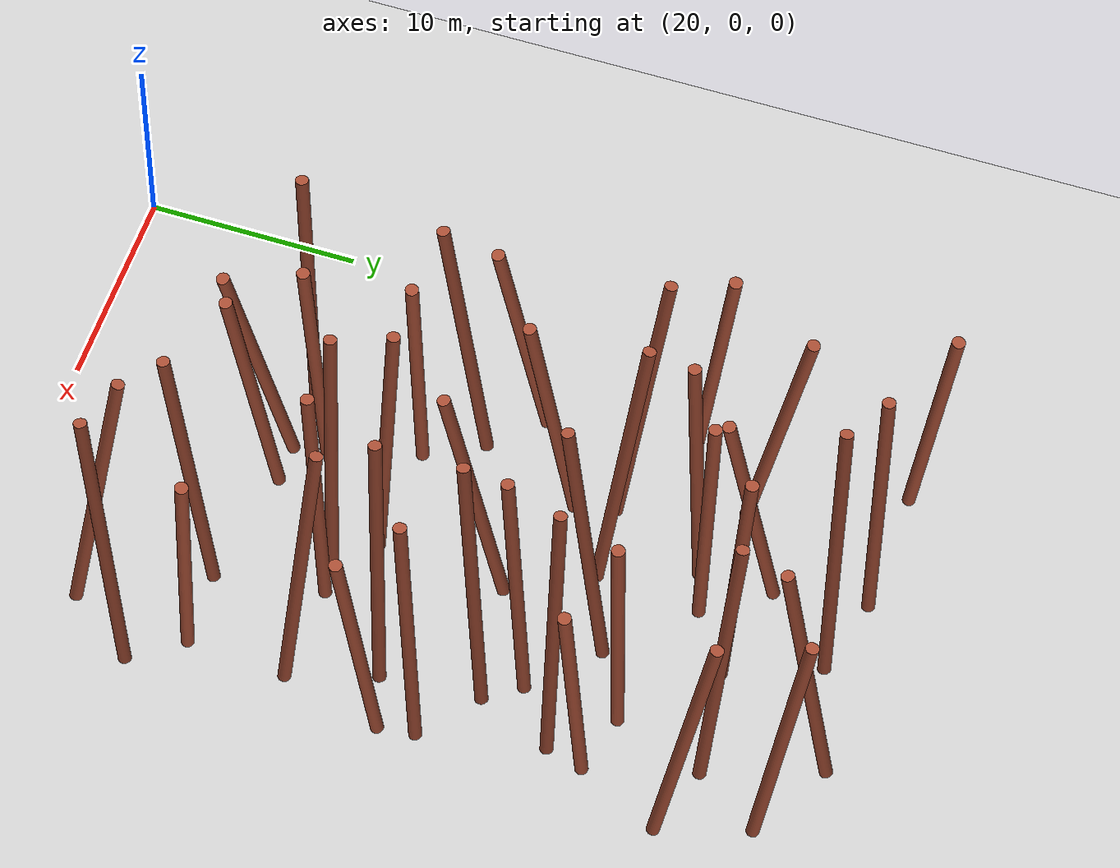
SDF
<sdf version="1.5">
 <world name="default">
  <include><uri>model://sun</uri></include>
  <include><uri>model://ground_plane</uri></include>
  <include><uri>model://asphalt_plane</uri><pose>0 0 -0.000001 0 0 0</pose></include>
  <model name="unit_cylinder_112">
   <pose>27.74535 10.86037 7.70000 0.05034 -0.10045 0.00000</pose>
   <gravity>0 0 0</gravity>
   <link name="link">
    <inertial>
     <mass>100</mass>
     <inertia><ixx>20</ixx><ixy>0</ixy><ixz>0</ixz><iyy>20</iyy><iyz>0</iyz><izz>20</izz></inertia>
    </inertial>
    <collision name="collision">
     <geometry><cylinder><radius>0.300</radius><length>15.000</length></cylinder></geometry>
    </collision>
    <visual name="visual">
     <geometry><cylinder><radius>0.300</radius><length>15.000</length></cylinder></geometry>
     <material>
      <script><name>Gazebo/Bricks</name><uri>file://media/materials/scripts/gazebo.material</uri></script>
     </material>
    </visual>
   </link>
   <static>1</static>
  </model>
  <model name="unit_cylinder_114">
   <pose>27.87703 18.30049 7.70000 0.14279 -0.03372 0.00000</pose>
   <gravity>0 0 0</gravity>
   <link name="link">
    <inertial>
     <mass>100</mass>
     <inertia><ixx>20</ixx><ixy>0</ixy><ixz>0</ixz><iyy>20</iyy><iyz>0</iyz><izz>20</izz></inertia>
    </inertial>
    <collision name="collision">
     <geometry><cylinder><radius>0.300</radius><length>15.000</length></cylinder></geometry>
    </collision>
    <visual name="visual">
     <geometry><cylinder><radius>0.300</radius><length>15.000</length></cylinder></geometry>
     <material>
      <script><name>Gazebo/Bricks</name><uri>file://media/materials/scripts/gazebo.material</uri></script>
     </material>
    </visual>
   </link>
   <static>1</static>
  </model>
  <model name="unit_cylinder_115">
   <pose>27.04338 20.73302 7.70000 0.11181 0.13801 0.00000</pose>
   <gravity>0 0 0</gravity>
   <link name="link">
    <inertial>
     <mass>100</mass>
     <inertia><ixx>20</ixx><ixy>0</ixy><ixz>0</ixz><iyy>20</iyy><iyz>0</iyz><izz>20</izz></inertia>
    </inertial>
    <collision name="collision">
     <geometry><cylinder><radius>0.300</radius><length>15.000</length></cylinder></geometry>
    </collision>
    <visual name="visual">
     <geometry><cylinder><radius>0.300</radius><length>15.000</length></cylinder></geometry>
     <material>
      <script><name>Gazebo/Bricks</name><uri>file://media/materials/scripts/gazebo.material</uri></script>
     </material>
    </visual>
   </link>
   <static>1</static>
  </model>
  <model name="unit_cylinder_116">
   <pose>28.45895 26.76882 7.70000 -0.09553 -0.16316 0.00000</pose>
   <gravity>0 0 0</gravity>
   <link name="link">
    <inertial>
     <mass>100</mass>
     <inertia><ixx>20</ixx><ixy>0</ixy><ixz>0</ixz><iyy>20</iyy><iyz>0</iyz><izz>20</izz></inertia>
    </inertial>
    <collision name="collision">
     <geometry><cylinder><radius>0.300</radius><length>15.000</length></cylinder></geometry>
    </collision>
    <visual name="visual">
     <geometry><cylinder><radius>0.300</radius><length>15.000</length></cylinder></geometry>
     <material>
      <script><name>Gazebo/Bricks</name><uri>file://media/materials/scripts/gazebo.material</uri></script>
     </material>
    </visual>
    <kinematic>1</kinematic>
   </link>
   <static>0</static>
   <plugin name="dynamic_obstacle_motion_116" filename="libobstaclePathPlugin.so">
    <motion_type>proximity_linear</motion_type>
    <direction>0.666834956 0.745205436 -0.000000000</direction>
    <velocity>0.474852907</velocity>
    <activation_distance>20.000000000</activation_distance>
    <activation_model>iris</activation_model>
    <orientation>false</orientation>
    <marker_enabled>true</marker_enabled>
    <marker_id>116</marker_id>
    <marker_radius>0.300000000</marker_radius>
    <marker_height>15.000000000</marker_height>
    <marker_rate>20.0</marker_rate>
    <marker_topic>/uav_simulator/dynamic_obstacles</marker_topic>
    <marker_frame>map</marker_frame>
   </plugin>
  </model>
  <model name="unit_cylinder_117">
   <pose>25.52468 29.25228 7.70000 -0.11158 0.09529 0.00000</pose>
   <gravity>0 0 0</gravity>
   <link name="link">
    <inertial>
     <mass>100</mass>
     <inertia><ixx>20</ixx><ixy>0</ixy><ixz>0</ixz><iyy>20</iyy><iyz>0</iyz><izz>20</izz></inertia>
    </inertial>
    <collision name="collision">
     <geometry><cylinder><radius>0.300</radius><length>15.000</length></cylinder></geometry>
    </collision>
    <visual name="visual">
     <geometry><cylinder><radius>0.300</radius><length>15.000</length></cylinder></geometry>
     <material>
      <script><name>Gazebo/Bricks</name><uri>file://media/materials/scripts/gazebo.material</uri></script>
     </material>
    </visual>
    <kinematic>1</kinematic>
   </link>
   <static>0</static>
   <plugin name="dynamic_obstacle_motion_117" filename="libobstaclePathPlugin.so">
    <motion_type>proximity_linear</motion_type>
    <direction>-0.609074142 0.793113289 -0.000000000</direction>
    <velocity>1.729240696</velocity>
    <activation_distance>20.000000000</activation_distance>
    <activation_model>iris</activation_model>
    <orientation>false</orientation>
    <marker_enabled>true</marker_enabled>
    <marker_id>117</marker_id>
    <marker_radius>0.300000000</marker_radius>
    <marker_height>15.000000000</marker_height>
    <marker_rate>20.0</marker_rate>
    <marker_topic>/uav_simulator/dynamic_obstacles</marker_topic>
    <marker_frame>map</marker_frame>
   </plugin>
  </model>
  <model name="unit_cylinder_118">
   <pose>28.16048 32.94810 7.70000 -0.16915 0.02239 0.00000</pose>
   <gravity>0 0 0</gravity>
   <link name="link">
    <inertial>
     <mass>100</mass>
     <inertia><ixx>20</ixx><ixy>0</ixy><ixz>0</ixz><iyy>20</iyy><iyz>0</iyz><izz>20</izz></inertia>
    </inertial>
    <collision name="collision">
     <geometry><cylinder><radius>0.300</radius><length>15.000</length></cylinder></geometry>
    </collision>
    <visual name="visual">
     <geometry><cylinder><radius>0.300</radius><length>15.000</length></cylinder></geometry>
     <material>
      <script><name>Gazebo/Bricks</name><uri>file://media/materials/scripts/gazebo.material</uri></script>
     </material>
    </visual>
    <kinematic>1</kinematic>
   </link>
   <static>0</static>
   <plugin name="dynamic_obstacle_motion_118" filename="libobstaclePathPlugin.so">
    <motion_type>proximity_linear</motion_type>
    <direction>0.884379714 0.466768167 0.000000000</direction>
    <velocity>1.361742940</velocity>
    <activation_distance>20.000000000</activation_distance>
    <activation_model>iris</activation_model>
    <orientation>false</orientation>
    <marker_enabled>true</marker_enabled>
    <marker_id>118</marker_id>
    <marker_radius>0.300000000</marker_radius>
    <marker_height>15.000000000</marker_height>
    <marker_rate>20.0</marker_rate>
    <marker_topic>/uav_simulator/dynamic_obstacles</marker_topic>
    <marker_frame>map</marker_frame>
   </plugin>
  </model>
  <model name="unit_cylinder_119">
   <pose>25.52675 39.23403 7.70000 -0.10777 0.09308 0.00000</pose>
   <gravity>0 0 0</gravity>
   <link name="link">
    <inertial>
     <mass>100</mass>
     <inertia><ixx>20</ixx><ixy>0</ixy><ixz>0</ixz><iyy>20</iyy><iyz>0</iyz><izz>20</izz></inertia>
    </inertial>
    <collision name="collision">
     <geometry><cylinder><radius>0.300</radius><length>15.000</length></cylinder></geometry>
    </collision>
    <visual name="visual">
     <geometry><cylinder><radius>0.300</radius><length>15.000</length></cylinder></geometry>
     <material>
      <script><name>Gazebo/Bricks</name><uri>file://media/materials/scripts/gazebo.material</uri></script>
     </material>
    </visual>
    <kinematic>1</kinematic>
   </link>
   <static>0</static>
   <plugin name="dynamic_obstacle_motion_119" filename="libobstaclePathPlugin.so">
    <motion_type>proximity_linear</motion_type>
    <direction>-0.947889785 0.318598424 0.000000000</direction>
    <velocity>0.718222326</velocity>
    <activation_distance>20.000000000</activation_distance>
    <activation_model>iris</activation_model>
    <orientation>false</orientation>
    <marker_enabled>true</marker_enabled>
    <marker_id>119</marker_id>
    <marker_radius>0.300000000</marker_radius>
    <marker_height>15.000000000</marker_height>
    <marker_rate>20.0</marker_rate>
    <marker_topic>/uav_simulator/dynamic_obstacles</marker_topic>
    <marker_frame>map</marker_frame>
   </plugin>
  </model>
  <model name="unit_cylinder_132">
   <pose>32.05302 10.04139 7.70000 0.13480 0.13348 0.00000</pose>
   <gravity>0 0 0</gravity>
   <link name="link">
    <inertial>
     <mass>100</mass>
     <inertia><ixx>20</ixx><ixy>0</ixy><ixz>0</ixz><iyy>20</iyy><iyz>0</iyz><izz>20</izz></inertia>
    </inertial>
    <collision name="collision">
     <geometry><cylinder><radius>0.300</radius><length>15.000</length></cylinder></geometry>
    </collision>
    <visual name="visual">
     <geometry><cylinder><radius>0.300</radius><length>15.000</length></cylinder></geometry>
     <material>
      <script><name>Gazebo/Bricks</name><uri>file://media/materials/scripts/gazebo.material</uri></script>
     </material>
    </visual>
    <kinematic>1</kinematic>
   </link>
   <static>0</static>
   <plugin name="dynamic_obstacle_motion_132" filename="libobstaclePathPlugin.so">
    <motion_type>proximity_linear</motion_type>
    <direction>-0.993745329 -0.111670147 0.000000000</direction>
    <velocity>0.364253635</velocity>
    <activation_distance>20.000000000</activation_distance>
    <activation_model>iris</activation_model>
    <orientation>false</orientation>
    <marker_enabled>true</marker_enabled>
    <marker_id>132</marker_id>
    <marker_radius>0.300000000</marker_radius>
    <marker_height>15.000000000</marker_height>
    <marker_rate>20.0</marker_rate>
    <marker_topic>/uav_simulator/dynamic_obstacles</marker_topic>
    <marker_frame>map</marker_frame>
   </plugin>
  </model>
  <model name="unit_cylinder_133">
   <pose>31.20562 12.38164 7.70000 0.01730 0.07194 0.00000</pose>
   <gravity>0 0 0</gravity>
   <link name="link">
    <inertial>
     <mass>100</mass>
     <inertia><ixx>20</ixx><ixy>0</ixy><ixz>0</ixz><iyy>20</iyy><iyz>0</iyz><izz>20</izz></inertia>
    </inertial>
    <collision name="collision">
     <geometry><cylinder><radius>0.300</radius><length>15.000</length></cylinder></geometry>
    </collision>
    <visual name="visual">
     <geometry><cylinder><radius>0.300</radius><length>15.000</length></cylinder></geometry>
     <material>
      <script><name>Gazebo/Bricks</name><uri>file://media/materials/scripts/gazebo.material</uri></script>
     </material>
    </visual>
    <kinematic>1</kinematic>
   </link>
   <static>0</static>
   <plugin name="dynamic_obstacle_motion_133" filename="libobstaclePathPlugin.so">
    <motion_type>proximity_linear</motion_type>
    <direction>-0.858018311 0.513619098 0.000000000</direction>
    <velocity>1.835171626</velocity>
    <activation_distance>20.000000000</activation_distance>
    <activation_model>iris</activation_model>
    <orientation>false</orientation>
    <marker_enabled>true</marker_enabled>
    <marker_id>133</marker_id>
    <marker_radius>0.300000000</marker_radius>
    <marker_height>15.000000000</marker_height>
    <marker_rate>20.0</marker_rate>
    <marker_topic>/uav_simulator/dynamic_obstacles</marker_topic>
    <marker_frame>map</marker_frame>
   </plugin>
  </model>
  <model name="unit_cylinder_134">
   <pose>30.28063 16.85545 7.70000 -0.01697 0.10522 0.00000</pose>
   <gravity>0 0 0</gravity>
   <link name="link">
    <inertial>
     <mass>100</mass>
     <inertia><ixx>20</ixx><ixy>0</ixy><ixz>0</ixz><iyy>20</iyy><iyz>0</iyz><izz>20</izz></inertia>
    </inertial>
    <collision name="collision">
     <geometry><cylinder><radius>0.300</radius><length>15.000</length></cylinder></geometry>
    </collision>
    <visual name="visual">
     <geometry><cylinder><radius>0.300</radius><length>15.000</length></cylinder></geometry>
     <material>
      <script><name>Gazebo/Bricks</name><uri>file://media/materials/scripts/gazebo.material</uri></script>
     </material>
    </visual>
    <kinematic>1</kinematic>
   </link>
   <static>0</static>
   <plugin name="dynamic_obstacle_motion_134" filename="libobstaclePathPlugin.so">
    <motion_type>proximity_linear</motion_type>
    <direction>0.832070155 0.554670404 0.000000000</direction>
    <velocity>0.270245892</velocity>
    <activation_distance>20.000000000</activation_distance>
    <activation_model>iris</activation_model>
    <orientation>false</orientation>
    <marker_enabled>true</marker_enabled>
    <marker_id>134</marker_id>
    <marker_radius>0.300000000</marker_radius>
    <marker_height>15.000000000</marker_height>
    <marker_rate>20.0</marker_rate>
    <marker_topic>/uav_simulator/dynamic_obstacles</marker_topic>
    <marker_frame>map</marker_frame>
   </plugin>
  </model>
  <model name="unit_cylinder_135">
   <pose>30.70385 23.30362 7.70000 0.11654 0.09221 0.00000</pose>
   <gravity>0 0 0</gravity>
   <link name="link">
    <inertial>
     <mass>100</mass>
     <inertia><ixx>20</ixx><ixy>0</ixy><ixz>0</ixz><iyy>20</iyy><iyz>0</iyz><izz>20</izz></inertia>
    </inertial>
    <collision name="collision">
     <geometry><cylinder><radius>0.300</radius><length>15.000</length></cylinder></geometry>
    </collision>
    <visual name="visual">
     <geometry><cylinder><radius>0.300</radius><length>15.000</length></cylinder></geometry>
     <material>
      <script><name>Gazebo/Bricks</name><uri>file://media/materials/scripts/gazebo.material</uri></script>
     </material>
    </visual>
   </link>
   <static>1</static>
  </model>
  <model name="unit_cylinder_136">
   <pose>32.08161 26.98344 7.70000 -0.08966 -0.16598 0.00000</pose>
   <gravity>0 0 0</gravity>
   <link name="link">
    <inertial>
     <mass>100</mass>
     <inertia><ixx>20</ixx><ixy>0</ixy><ixz>0</ixz><iyy>20</iyy><iyz>0</iyz><izz>20</izz></inertia>
    </inertial>
    <collision name="collision">
     <geometry><cylinder><radius>0.300</radius><length>15.000</length></cylinder></geometry>
    </collision>
    <visual name="visual">
     <geometry><cylinder><radius>0.300</radius><length>15.000</length></cylinder></geometry>
     <material>
      <script><name>Gazebo/Bricks</name><uri>file://media/materials/scripts/gazebo.material</uri></script>
     </material>
    </visual>
   </link>
   <static>1</static>
  </model>
  <model name="unit_cylinder_137">
   <pose>31.43012 30.19324 7.70000 0.05524 -0.03098 0.00000</pose>
   <gravity>0 0 0</gravity>
   <link name="link">
    <inertial>
     <mass>100</mass>
     <inertia><ixx>20</ixx><ixy>0</ixy><ixz>0</ixz><iyy>20</iyy><iyz>0</iyz><izz>20</izz></inertia>
    </inertial>
    <collision name="collision">
     <geometry><cylinder><radius>0.300</radius><length>15.000</length></cylinder></geometry>
    </collision>
    <visual name="visual">
     <geometry><cylinder><radius>0.300</radius><length>15.000</length></cylinder></geometry>
     <material>
      <script><name>Gazebo/Bricks</name><uri>file://media/materials/scripts/gazebo.material</uri></script>
     </material>
    </visual>
   </link>
   <static>1</static>
  </model>
  <model name="unit_cylinder_138">
   <pose>32.56086 33.05634 7.70000 0.13762 0.12561 0.00000</pose>
   <gravity>0 0 0</gravity>
   <link name="link">
    <inertial>
     <mass>100</mass>
     <inertia><ixx>20</ixx><ixy>0</ixy><ixz>0</ixz><iyy>20</iyy><iyz>0</iyz><izz>20</izz></inertia>
    </inertial>
    <collision name="collision">
     <geometry><cylinder><radius>0.300</radius><length>15.000</length></cylinder></geometry>
    </collision>
    <visual name="visual">
     <geometry><cylinder><radius>0.300</radius><length>15.000</length></cylinder></geometry>
     <material>
      <script><name>Gazebo/Bricks</name><uri>file://media/materials/scripts/gazebo.material</uri></script>
     </material>
    </visual>
    <kinematic>1</kinematic>
   </link>
   <static>0</static>
   <plugin name="dynamic_obstacle_motion_138" filename="libobstaclePathPlugin.so">
    <motion_type>proximity_linear</motion_type>
    <direction>-0.797183945 -0.603736497 0.000000000</direction>
    <velocity>0.761127085</velocity>
    <activation_distance>20.000000000</activation_distance>
    <activation_model>iris</activation_model>
    <orientation>false</orientation>
    <marker_enabled>true</marker_enabled>
    <marker_id>138</marker_id>
    <marker_radius>0.300000000</marker_radius>
    <marker_height>15.000000000</marker_height>
    <marker_rate>20.0</marker_rate>
    <marker_topic>/uav_simulator/dynamic_obstacles</marker_topic>
    <marker_frame>map</marker_frame>
   </plugin>
  </model>
  <model name="unit_cylinder_139">
   <pose>30.55597 38.19634 7.70000 0.01178 -0.04278 0.00000</pose>
   <gravity>0 0 0</gravity>
   <link name="link">
    <inertial>
     <mass>100</mass>
     <inertia><ixx>20</ixx><ixy>0</ixy><ixz>0</ixz><iyy>20</iyy><iyz>0</iyz><izz>20</izz></inertia>
    </inertial>
    <collision name="collision">
     <geometry><cylinder><radius>0.300</radius><length>15.000</length></cylinder></geometry>
    </collision>
    <visual name="visual">
     <geometry><cylinder><radius>0.300</radius><length>15.000</length></cylinder></geometry>
     <material>
      <script><name>Gazebo/Bricks</name><uri>file://media/materials/scripts/gazebo.material</uri></script>
     </material>
    </visual>
   </link>
   <static>1</static>
  </model>
  <model name="unit_cylinder_152">
   <pose>33.56734 10.30587 7.70000 0.09227 0.09206 0.00000</pose>
   <gravity>0 0 0</gravity>
   <link name="link">
    <inertial>
     <mass>100</mass>
     <inertia><ixx>20</ixx><ixy>0</ixy><ixz>0</ixz><iyy>20</iyy><iyz>0</iyz><izz>20</izz></inertia>
    </inertial>
    <collision name="collision">
     <geometry><cylinder><radius>0.300</radius><length>15.000</length></cylinder></geometry>
    </collision>
    <visual name="visual">
     <geometry><cylinder><radius>0.300</radius><length>15.000</length></cylinder></geometry>
     <material>
      <script><name>Gazebo/Bricks</name><uri>file://media/materials/scripts/gazebo.material</uri></script>
     </material>
    </visual>
   </link>
   <static>1</static>
  </model>
  <model name="unit_cylinder_153">
   <pose>35.51889 14.66713 7.70000 0.01790 -0.11387 0.00000</pose>
   <gravity>0 0 0</gravity>
   <link name="link">
    <inertial>
     <mass>100</mass>
     <inertia><ixx>20</ixx><ixy>0</ixy><ixz>0</ixz><iyy>20</iyy><iyz>0</iyz><izz>20</izz></inertia>
    </inertial>
    <collision name="collision">
     <geometry><cylinder><radius>0.300</radius><length>15.000</length></cylinder></geometry>
    </collision>
    <visual name="visual">
     <geometry><cylinder><radius>0.300</radius><length>15.000</length></cylinder></geometry>
     <material>
      <script><name>Gazebo/Bricks</name><uri>file://media/materials/scripts/gazebo.material</uri></script>
     </material>
    </visual>
    <kinematic>1</kinematic>
   </link>
   <static>0</static>
   <plugin name="dynamic_obstacle_motion_153" filename="libobstaclePathPlugin.so">
    <motion_type>proximity_linear</motion_type>
    <direction>-0.433672787 0.901070427 0.000000000</direction>
    <velocity>1.526734299</velocity>
    <activation_distance>20.000000000</activation_distance>
    <activation_model>iris</activation_model>
    <orientation>false</orientation>
    <marker_enabled>true</marker_enabled>
    <marker_id>153</marker_id>
    <marker_radius>0.300000000</marker_radius>
    <marker_height>15.000000000</marker_height>
    <marker_rate>20.0</marker_rate>
    <marker_topic>/uav_simulator/dynamic_obstacles</marker_topic>
    <marker_frame>map</marker_frame>
   </plugin>
  </model>
  <model name="unit_cylinder_154">
   <pose>34.23109 16.76425 7.70000 -0.03972 -0.07301 0.00000</pose>
   <gravity>0 0 0</gravity>
   <link name="link">
    <inertial>
     <mass>100</mass>
     <inertia><ixx>20</ixx><ixy>0</ixy><ixz>0</ixz><iyy>20</iyy><iyz>0</iyz><izz>20</izz></inertia>
    </inertial>
    <collision name="collision">
     <geometry><cylinder><radius>0.300</radius><length>15.000</length></cylinder></geometry>
    </collision>
    <visual name="visual">
     <geometry><cylinder><radius>0.300</radius><length>15.000</length></cylinder></geometry>
     <material>
      <script><name>Gazebo/Bricks</name><uri>file://media/materials/scripts/gazebo.material</uri></script>
     </material>
    </visual>
   </link>
   <static>1</static>
  </model>
  <model name="unit_cylinder_155">
   <pose>35.68902 21.36283 7.70000 0.16297 0.05048 0.00000</pose>
   <gravity>0 0 0</gravity>
   <link name="link">
    <inertial>
     <mass>100</mass>
     <inertia><ixx>20</ixx><ixy>0</ixy><ixz>0</ixz><iyy>20</iyy><iyz>0</iyz><izz>20</izz></inertia>
    </inertial>
    <collision name="collision">
     <geometry><cylinder><radius>0.300</radius><length>15.000</length></cylinder></geometry>
    </collision>
    <visual name="visual">
     <geometry><cylinder><radius>0.300</radius><length>15.000</length></cylinder></geometry>
     <material>
      <script><name>Gazebo/Bricks</name><uri>file://media/materials/scripts/gazebo.material</uri></script>
     </material>
    </visual>
   </link>
   <static>1</static>
  </model>
  <model name="unit_cylinder_156">
   <pose>36.50892 26.73412 7.70000 0.14278 -0.07115 0.00000</pose>
   <gravity>0 0 0</gravity>
   <link name="link">
    <inertial>
     <mass>100</mass>
     <inertia><ixx>20</ixx><ixy>0</ixy><ixz>0</ixz><iyy>20</iyy><iyz>0</iyz><izz>20</izz></inertia>
    </inertial>
    <collision name="collision">
     <geometry><cylinder><radius>0.300</radius><length>15.000</length></cylinder></geometry>
    </collision>
    <visual name="visual">
     <geometry><cylinder><radius>0.300</radius><length>15.000</length></cylinder></geometry>
     <material>
      <script><name>Gazebo/Bricks</name><uri>file://media/materials/scripts/gazebo.material</uri></script>
     </material>
    </visual>
   </link>
   <static>1</static>
  </model>
  <model name="unit_cylinder_157">
   <pose>33.73118 31.36377 7.70000 -0.02480 0.02352 0.00000</pose>
   <gravity>0 0 0</gravity>
   <link name="link">
    <inertial>
     <mass>100</mass>
     <inertia><ixx>20</ixx><ixy>0</ixy><ixz>0</ixz><iyy>20</iyy><iyz>0</iyz><izz>20</izz></inertia>
    </inertial>
    <collision name="collision">
     <geometry><cylinder><radius>0.300</radius><length>15.000</length></cylinder></geometry>
    </collision>
    <visual name="visual">
     <geometry><cylinder><radius>0.300</radius><length>15.000</length></cylinder></geometry>
     <material>
      <script><name>Gazebo/Bricks</name><uri>file://media/materials/scripts/gazebo.material</uri></script>
     </material>
    </visual>
   </link>
   <static>1</static>
  </model>
  <model name="unit_cylinder_158">
   <pose>36.24025 33.46193 7.70000 -0.05071 -0.01518 0.00000</pose>
   <gravity>0 0 0</gravity>
   <link name="link">
    <inertial>
     <mass>100</mass>
     <inertia><ixx>20</ixx><ixy>0</ixy><ixz>0</ixz><iyy>20</iyy><iyz>0</iyz><izz>20</izz></inertia>
    </inertial>
    <collision name="collision">
     <geometry><cylinder><radius>0.300</radius><length>15.000</length></cylinder></geometry>
    </collision>
    <visual name="visual">
     <geometry><cylinder><radius>0.300</radius><length>15.000</length></cylinder></geometry>
     <material>
      <script><name>Gazebo/Bricks</name><uri>file://media/materials/scripts/gazebo.material</uri></script>
     </material>
    </visual>
    <kinematic>1</kinematic>
   </link>
   <static>0</static>
   <plugin name="dynamic_obstacle_motion_158" filename="libobstaclePathPlugin.so">
    <motion_type>proximity_linear</motion_type>
    <direction>-0.181990752 -0.983300242 0.000000000</direction>
    <velocity>0.301366166</velocity>
    <activation_distance>20.000000000</activation_distance>
    <activation_model>iris</activation_model>
    <orientation>false</orientation>
    <marker_enabled>true</marker_enabled>
    <marker_id>158</marker_id>
    <marker_radius>0.300000000</marker_radius>
    <marker_height>15.000000000</marker_height>
    <marker_rate>20.0</marker_rate>
    <marker_topic>/uav_simulator/dynamic_obstacles</marker_topic>
    <marker_frame>map</marker_frame>
   </plugin>
  </model>
  <model name="unit_cylinder_159">
   <pose>33.50218 37.11241 7.70000 0.03466 -0.16466 0.00000</pose>
   <gravity>0 0 0</gravity>
   <link name="link">
    <inertial>
     <mass>100</mass>
     <inertia><ixx>20</ixx><ixy>0</ixy><ixz>0</ixz><iyy>20</iyy><iyz>0</iyz><izz>20</izz></inertia>
    </inertial>
    <collision name="collision">
     <geometry><cylinder><radius>0.300</radius><length>15.000</length></cylinder></geometry>
    </collision>
    <visual name="visual">
     <geometry><cylinder><radius>0.300</radius><length>15.000</length></cylinder></geometry>
     <material>
      <script><name>Gazebo/Bricks</name><uri>file://media/materials/scripts/gazebo.material</uri></script>
     </material>
    </visual>
    <kinematic>1</kinematic>
   </link>
   <static>0</static>
   <plugin name="dynamic_obstacle_motion_159" filename="libobstaclePathPlugin.so">
    <motion_type>proximity_linear</motion_type>
    <direction>-0.942698217 -0.333646628 0.000000000</direction>
    <velocity>0.441131157</velocity>
    <activation_distance>20.000000000</activation_distance>
    <activation_model>iris</activation_model>
    <orientation>false</orientation>
    <marker_enabled>true</marker_enabled>
    <marker_id>159</marker_id>
    <marker_radius>0.300000000</marker_radius>
    <marker_height>15.000000000</marker_height>
    <marker_rate>20.0</marker_rate>
    <marker_topic>/uav_simulator/dynamic_obstacles</marker_topic>
    <marker_frame>map</marker_frame>
   </plugin>
  </model>
  <model name="unit_cylinder_171">
   <pose>40.68272 5.64184 7.70000 -0.14676 -0.13757 0.00000</pose>
   <gravity>0 0 0</gravity>
   <link name="link">
    <inertial>
     <mass>100</mass>
     <inertia><ixx>20</ixx><ixy>0</ixy><ixz>0</ixz><iyy>20</iyy><iyz>0</iyz><izz>20</izz></inertia>
    </inertial>
    <collision name="collision">
     <geometry><cylinder><radius>0.300</radius><length>15.000</length></cylinder></geometry>
    </collision>
    <visual name="visual">
     <geometry><cylinder><radius>0.300</radius><length>15.000</length></cylinder></geometry>
     <material>
      <script><name>Gazebo/Bricks</name><uri>file://media/materials/scripts/gazebo.material</uri></script>
     </material>
    </visual>
   </link>
   <static>1</static>
  </model>
  <model name="unit_cylinder_172">
   <pose>38.37421 9.08986 7.70000 0.12404 -0.04997 0.00000</pose>
   <gravity>0 0 0</gravity>
   <link name="link">
    <inertial>
     <mass>100</mass>
     <inertia><ixx>20</ixx><ixy>0</ixy><ixz>0</ixz><iyy>20</iyy><iyz>0</iyz><izz>20</izz></inertia>
    </inertial>
    <collision name="collision">
     <geometry><cylinder><radius>0.300</radius><length>15.000</length></cylinder></geometry>
    </collision>
    <visual name="visual">
     <geometry><cylinder><radius>0.300</radius><length>15.000</length></cylinder></geometry>
     <material>
      <script><name>Gazebo/Bricks</name><uri>file://media/materials/scripts/gazebo.material</uri></script>
     </material>
    </visual>
    <kinematic>1</kinematic>
   </link>
   <static>0</static>
   <plugin name="dynamic_obstacle_motion_172" filename="libobstaclePathPlugin.so">
    <motion_type>proximity_linear</motion_type>
    <direction>0.464951464 -0.885336171 0.000000000</direction>
    <velocity>1.213142917</velocity>
    <activation_distance>20.000000000</activation_distance>
    <activation_model>iris</activation_model>
    <orientation>false</orientation>
    <marker_enabled>true</marker_enabled>
    <marker_id>172</marker_id>
    <marker_radius>0.300000000</marker_radius>
    <marker_height>15.000000000</marker_height>
    <marker_rate>20.0</marker_rate>
    <marker_topic>/uav_simulator/dynamic_obstacles</marker_topic>
    <marker_frame>map</marker_frame>
   </plugin>
  </model>
  <model name="unit_cylinder_173">
   <pose>37.92122 14.84577 7.70000 0.02387 0.00122 0.00000</pose>
   <gravity>0 0 0</gravity>
   <link name="link">
    <inertial>
     <mass>100</mass>
     <inertia><ixx>20</ixx><ixy>0</ixy><ixz>0</ixz><iyy>20</iyy><iyz>0</iyz><izz>20</izz></inertia>
    </inertial>
    <collision name="collision">
     <geometry><cylinder><radius>0.300</radius><length>15.000</length></cylinder></geometry>
    </collision>
    <visual name="visual">
     <geometry><cylinder><radius>0.300</radius><length>15.000</length></cylinder></geometry>
     <material>
      <script><name>Gazebo/Bricks</name><uri>file://media/materials/scripts/gazebo.material</uri></script>
     </material>
    </visual>
    <kinematic>1</kinematic>
   </link>
   <static>0</static>
   <plugin name="dynamic_obstacle_motion_173" filename="libobstaclePathPlugin.so">
    <motion_type>proximity_linear</motion_type>
    <direction>-0.773989747 0.633198130 0.000000000</direction>
    <velocity>0.532166491</velocity>
    <activation_distance>20.000000000</activation_distance>
    <activation_model>iris</activation_model>
    <orientation>false</orientation>
    <marker_enabled>true</marker_enabled>
    <marker_id>173</marker_id>
    <marker_radius>0.300000000</marker_radius>
    <marker_height>15.000000000</marker_height>
    <marker_rate>20.0</marker_rate>
    <marker_topic>/uav_simulator/dynamic_obstacles</marker_topic>
    <marker_frame>map</marker_frame>
   </plugin>
  </model>
  <model name="unit_cylinder_174">
   <pose>40.29233 18.48860 7.70000 0.04421 -0.14767 0.00000</pose>
   <gravity>0 0 0</gravity>
   <link name="link">
    <inertial>
     <mass>100</mass>
     <inertia><ixx>20</ixx><ixy>0</ixy><ixz>0</ixz><iyy>20</iyy><iyz>0</iyz><izz>20</izz></inertia>
    </inertial>
    <collision name="collision">
     <geometry><cylinder><radius>0.300</radius><length>15.000</length></cylinder></geometry>
    </collision>
    <visual name="visual">
     <geometry><cylinder><radius>0.300</radius><length>15.000</length></cylinder></geometry>
     <material>
      <script><name>Gazebo/Bricks</name><uri>file://media/materials/scripts/gazebo.material</uri></script>
     </material>
    </visual>
   </link>
   <static>1</static>
  </model>
  <model name="unit_cylinder_175">
   <pose>40.06194 22.76758 7.70000 0.09417 -0.13146 0.00000</pose>
   <gravity>0 0 0</gravity>
   <link name="link">
    <inertial>
     <mass>100</mass>
     <inertia><ixx>20</ixx><ixy>0</ixy><ixz>0</ixz><iyy>20</iyy><iyz>0</iyz><izz>20</izz></inertia>
    </inertial>
    <collision name="collision">
     <geometry><cylinder><radius>0.300</radius><length>15.000</length></cylinder></geometry>
    </collision>
    <visual name="visual">
     <geometry><cylinder><radius>0.300</radius><length>15.000</length></cylinder></geometry>
     <material>
      <script><name>Gazebo/Bricks</name><uri>file://media/materials/scripts/gazebo.material</uri></script>
     </material>
    </visual>
   </link>
   <static>1</static>
  </model>
  <model name="unit_cylinder_176">
   <pose>39.57082 24.58155 7.70000 0.06331 -0.03416 0.00000</pose>
   <gravity>0 0 0</gravity>
   <link name="link">
    <inertial>
     <mass>100</mass>
     <inertia><ixx>20</ixx><ixy>0</ixy><ixz>0</ixz><iyy>20</iyy><iyz>0</iyz><izz>20</izz></inertia>
    </inertial>
    <collision name="collision">
     <geometry><cylinder><radius>0.300</radius><length>15.000</length></cylinder></geometry>
    </collision>
    <visual name="visual">
     <geometry><cylinder><radius>0.300</radius><length>15.000</length></cylinder></geometry>
     <material>
      <script><name>Gazebo/Bricks</name><uri>file://media/materials/scripts/gazebo.material</uri></script>
     </material>
    </visual>
   </link>
   <static>1</static>
  </model>
  <model name="unit_cylinder_177">
   <pose>40.55861 29.49933 7.70000 -0.00270 0.05993 0.00000</pose>
   <gravity>0 0 0</gravity>
   <link name="link">
    <inertial>
     <mass>100</mass>
     <inertia><ixx>20</ixx><ixy>0</ixy><ixz>0</ixz><iyy>20</iyy><iyz>0</iyz><izz>20</izz></inertia>
    </inertial>
    <collision name="collision">
     <geometry><cylinder><radius>0.300</radius><length>15.000</length></cylinder></geometry>
    </collision>
    <visual name="visual">
     <geometry><cylinder><radius>0.300</radius><length>15.000</length></cylinder></geometry>
     <material>
      <script><name>Gazebo/Bricks</name><uri>file://media/materials/scripts/gazebo.material</uri></script>
     </material>
    </visual>
   </link>
   <static>1</static>
  </model>
  <model name="unit_cylinder_178">
   <pose>40.44743 34.06743 7.70000 -0.04503 -0.15846 0.00000</pose>
   <gravity>0 0 0</gravity>
   <link name="link">
    <inertial>
     <mass>100</mass>
     <inertia><ixx>20</ixx><ixy>0</ixy><ixz>0</ixz><iyy>20</iyy><iyz>0</iyz><izz>20</izz></inertia>
    </inertial>
    <collision name="collision">
     <geometry><cylinder><radius>0.300</radius><length>15.000</length></cylinder></geometry>
    </collision>
    <visual name="visual">
     <geometry><cylinder><radius>0.300</radius><length>15.000</length></cylinder></geometry>
     <material>
      <script><name>Gazebo/Bricks</name><uri>file://media/materials/scripts/gazebo.material</uri></script>
     </material>
    </visual>
    <kinematic>1</kinematic>
   </link>
   <static>0</static>
   <plugin name="dynamic_obstacle_motion_178" filename="libobstaclePathPlugin.so">
    <motion_type>proximity_linear</motion_type>
    <direction>0.766911514 0.641752857 0.000000000</direction>
    <velocity>0.793428052</velocity>
    <activation_distance>20.000000000</activation_distance>
    <activation_model>iris</activation_model>
    <orientation>false</orientation>
    <marker_enabled>true</marker_enabled>
    <marker_id>178</marker_id>
    <marker_radius>0.300000000</marker_radius>
    <marker_height>15.000000000</marker_height>
    <marker_rate>20.0</marker_rate>
    <marker_topic>/uav_simulator/dynamic_obstacles</marker_topic>
    <marker_frame>map</marker_frame>
   </plugin>
  </model>
  <model name="unit_cylinder_179">
   <pose>39.84404 37.75085 7.70000 0.16204 0.00792 0.00000</pose>
   <gravity>0 0 0</gravity>
   <link name="link">
    <inertial>
     <mass>100</mass>
     <inertia><ixx>20</ixx><ixy>0</ixy><ixz>0</ixz><iyy>20</iyy><iyz>0</iyz><izz>20</izz></inertia>
    </inertial>
    <collision name="collision">
     <geometry><cylinder><radius>0.300</radius><length>15.000</length></cylinder></geometry>
    </collision>
    <visual name="visual">
     <geometry><cylinder><radius>0.300</radius><length>15.000</length></cylinder></geometry>
     <material>
      <script><name>Gazebo/Bricks</name><uri>file://media/materials/scripts/gazebo.material</uri></script>
     </material>
    </visual>
    <kinematic>1</kinematic>
   </link>
   <static>0</static>
   <plugin name="dynamic_obstacle_motion_179" filename="libobstaclePathPlugin.so">
    <motion_type>proximity_linear</motion_type>
    <direction>-0.085461007 -0.996341516 0.000000000</direction>
    <velocity>0.980715768</velocity>
    <activation_distance>20.000000000</activation_distance>
    <activation_model>iris</activation_model>
    <orientation>false</orientation>
    <marker_enabled>true</marker_enabled>
    <marker_id>179</marker_id>
    <marker_radius>0.300000000</marker_radius>
    <marker_height>15.000000000</marker_height>
    <marker_rate>20.0</marker_rate>
    <marker_topic>/uav_simulator/dynamic_obstacles</marker_topic>
    <marker_frame>map</marker_frame>
   </plugin>
  </model>
  <model name="unit_cylinder_191">
   <pose>43.08848 6.87583 7.70000 0.12398 -0.13724 0.00000</pose>
   <gravity>0 0 0</gravity>
   <link name="link">
    <inertial>
     <mass>100</mass>
     <inertia><ixx>20</ixx><ixy>0</ixy><ixz>0</ixz><iyy>20</iyy><iyz>0</iyz><izz>20</izz></inertia>
    </inertial>
    <collision name="collision">
     <geometry><cylinder><radius>0.300</radius><length>15.000</length></cylinder></geometry>
    </collision>
    <visual name="visual">
     <geometry><cylinder><radius>0.300</radius><length>15.000</length></cylinder></geometry>
     <material>
      <script><name>Gazebo/Bricks</name><uri>file://media/materials/scripts/gazebo.material</uri></script>
     </material>
    </visual>
    <kinematic>1</kinematic>
   </link>
   <static>0</static>
   <plugin name="dynamic_obstacle_motion_191" filename="libobstaclePathPlugin.so">
    <motion_type>proximity_linear</motion_type>
    <direction>0.909640243 0.415396954 0.000000000</direction>
    <velocity>0.614425704</velocity>
    <activation_distance>20.000000000</activation_distance>
    <activation_model>iris</activation_model>
    <orientation>false</orientation>
    <marker_enabled>true</marker_enabled>
    <marker_id>191</marker_id>
    <marker_radius>0.300000000</marker_radius>
    <marker_height>15.000000000</marker_height>
    <marker_rate>20.0</marker_rate>
    <marker_topic>/uav_simulator/dynamic_obstacles</marker_topic>
    <marker_frame>map</marker_frame>
   </plugin>
  </model>
  <model name="unit_cylinder_192">
   <pose>43.07968 10.65032 7.70000 -0.07301 0.10127 0.00000</pose>
   <gravity>0 0 0</gravity>
   <link name="link">
    <inertial>
     <mass>100</mass>
     <inertia><ixx>20</ixx><ixy>0</ixy><ixz>0</ixz><iyy>20</iyy><iyz>0</iyz><izz>20</izz></inertia>
    </inertial>
    <collision name="collision">
     <geometry><cylinder><radius>0.300</radius><length>15.000</length></cylinder></geometry>
    </collision>
    <visual name="visual">
     <geometry><cylinder><radius>0.300</radius><length>15.000</length></cylinder></geometry>
     <material>
      <script><name>Gazebo/Bricks</name><uri>file://media/materials/scripts/gazebo.material</uri></script>
     </material>
    </visual>
    <kinematic>1</kinematic>
   </link>
   <static>0</static>
   <plugin name="dynamic_obstacle_motion_192" filename="libobstaclePathPlugin.so">
    <motion_type>proximity_linear</motion_type>
    <direction>-0.133310831 -0.991074277 0.000000000</direction>
    <velocity>0.708398887</velocity>
    <activation_distance>20.000000000</activation_distance>
    <activation_model>iris</activation_model>
    <orientation>false</orientation>
    <marker_enabled>true</marker_enabled>
    <marker_id>192</marker_id>
    <marker_radius>0.300000000</marker_radius>
    <marker_height>15.000000000</marker_height>
    <marker_rate>20.0</marker_rate>
    <marker_topic>/uav_simulator/dynamic_obstacles</marker_topic>
    <marker_frame>map</marker_frame>
   </plugin>
  </model>
  <model name="unit_cylinder_193">
   <pose>41.60238 15.40411 7.70000 -0.07861 -0.14880 0.00000</pose>
   <gravity>0 0 0</gravity>
   <link name="link">
    <inertial>
     <mass>100</mass>
     <inertia><ixx>20</ixx><ixy>0</ixy><ixz>0</ixz><iyy>20</iyy><iyz>0</iyz><izz>20</izz></inertia>
    </inertial>
    <collision name="collision">
     <geometry><cylinder><radius>0.300</radius><length>15.000</length></cylinder></geometry>
    </collision>
    <visual name="visual">
     <geometry><cylinder><radius>0.300</radius><length>15.000</length></cylinder></geometry>
     <material>
      <script><name>Gazebo/Bricks</name><uri>file://media/materials/scripts/gazebo.material</uri></script>
     </material>
    </visual>
   </link>
   <static>1</static>
  </model>
  <model name="unit_cylinder_194">
   <pose>44.63861 19.09754 7.70000 0.06397 0.10446 0.00000</pose>
   <gravity>0 0 0</gravity>
   <link name="link">
    <inertial>
     <mass>100</mass>
     <inertia><ixx>20</ixx><ixy>0</ixy><ixz>0</ixz><iyy>20</iyy><iyz>0</iyz><izz>20</izz></inertia>
    </inertial>
    <collision name="collision">
     <geometry><cylinder><radius>0.300</radius><length>15.000</length></cylinder></geometry>
    </collision>
    <visual name="visual">
     <geometry><cylinder><radius>0.300</radius><length>15.000</length></cylinder></geometry>
     <material>
      <script><name>Gazebo/Bricks</name><uri>file://media/materials/scripts/gazebo.material</uri></script>
     </material>
    </visual>
    <kinematic>1</kinematic>
   </link>
   <static>0</static>
   <plugin name="dynamic_obstacle_motion_194" filename="libobstaclePathPlugin.so">
    <motion_type>proximity_linear</motion_type>
    <direction>-0.827223986 -0.561872295 0.000000000</direction>
    <velocity>0.737188688</velocity>
    <activation_distance>20.000000000</activation_distance>
    <activation_model>iris</activation_model>
    <orientation>false</orientation>
    <marker_enabled>true</marker_enabled>
    <marker_id>194</marker_id>
    <marker_radius>0.300000000</marker_radius>
    <marker_height>15.000000000</marker_height>
    <marker_rate>20.0</marker_rate>
    <marker_topic>/uav_simulator/dynamic_obstacles</marker_topic>
    <marker_frame>map</marker_frame>
   </plugin>
  </model>
  <model name="unit_cylinder_195">
   <pose>43.24275 20.90881 7.70000 0.04949 -0.05416 0.00000</pose>
   <gravity>0 0 0</gravity>
   <link name="link">
    <inertial>
     <mass>100</mass>
     <inertia><ixx>20</ixx><ixy>0</ixy><ixz>0</ixz><iyy>20</iyy><iyz>0</iyz><izz>20</izz></inertia>
    </inertial>
    <collision name="collision">
     <geometry><cylinder><radius>0.300</radius><length>15.000</length></cylinder></geometry>
    </collision>
    <visual name="visual">
     <geometry><cylinder><radius>0.300</radius><length>15.000</length></cylinder></geometry>
     <material>
      <script><name>Gazebo/Bricks</name><uri>file://media/materials/scripts/gazebo.material</uri></script>
     </material>
    </visual>
    <kinematic>1</kinematic>
   </link>
   <static>0</static>
   <plugin name="dynamic_obstacle_motion_195" filename="libobstaclePathPlugin.so">
    <motion_type>proximity_linear</motion_type>
    <direction>0.980067094 0.198666783 0.000000000</direction>
    <velocity>0.730806265</velocity>
    <activation_distance>20.000000000</activation_distance>
    <activation_model>iris</activation_model>
    <orientation>false</orientation>
    <marker_enabled>true</marker_enabled>
    <marker_id>195</marker_id>
    <marker_radius>0.300000000</marker_radius>
    <marker_height>15.000000000</marker_height>
    <marker_rate>20.0</marker_rate>
    <marker_topic>/uav_simulator/dynamic_obstacles</marker_topic>
    <marker_frame>map</marker_frame>
   </plugin>
  </model>
  <model name="unit_cylinder_196">
   <pose>41.32179 26.84396 7.70000 0.02086 -0.16702 0.00000</pose>
   <gravity>0 0 0</gravity>
   <link name="link">
    <inertial>
     <mass>100</mass>
     <inertia><ixx>20</ixx><ixy>0</ixy><ixz>0</ixz><iyy>20</iyy><iyz>0</iyz><izz>20</izz></inertia>
    </inertial>
    <collision name="collision">
     <geometry><cylinder><radius>0.300</radius><length>15.000</length></cylinder></geometry>
    </collision>
    <visual name="visual">
     <geometry><cylinder><radius>0.300</radius><length>15.000</length></cylinder></geometry>
     <material>
      <script><name>Gazebo/Bricks</name><uri>file://media/materials/scripts/gazebo.material</uri></script>
     </material>
    </visual>
   </link>
   <static>1</static>
  </model>
  <model name="unit_cylinder_197">
   <pose>43.92701 28.59472 7.70000 0.02187 0.12455 0.00000</pose>
   <gravity>0 0 0</gravity>
   <link name="link">
    <inertial>
     <mass>100</mass>
     <inertia><ixx>20</ixx><ixy>0</ixy><ixz>0</ixz><iyy>20</iyy><iyz>0</iyz><izz>20</izz></inertia>
    </inertial>
    <collision name="collision">
     <geometry><cylinder><radius>0.300</radius><length>15.000</length></cylinder></geometry>
    </collision>
    <visual name="visual">
     <geometry><cylinder><radius>0.300</radius><length>15.000</length></cylinder></geometry>
     <material>
      <script><name>Gazebo/Bricks</name><uri>file://media/materials/scripts/gazebo.material</uri></script>
     </material>
    </visual>
    <kinematic>1</kinematic>
   </link>
   <static>0</static>
   <plugin name="dynamic_obstacle_motion_197" filename="libobstaclePathPlugin.so">
    <motion_type>proximity_linear</motion_type>
    <direction>0.972713577 0.232009260 0.000000000</direction>
    <velocity>0.206185354</velocity>
    <activation_distance>20.000000000</activation_distance>
    <activation_model>iris</activation_model>
    <orientation>false</orientation>
    <marker_enabled>true</marker_enabled>
    <marker_id>197</marker_id>
    <marker_radius>0.300000000</marker_radius>
    <marker_height>15.000000000</marker_height>
    <marker_rate>20.0</marker_rate>
    <marker_topic>/uav_simulator/dynamic_obstacles</marker_topic>
    <marker_frame>map</marker_frame>
   </plugin>
  </model>
  <model name="unit_cylinder_198">
   <pose>44.62610 33.74791 7.70000 -0.14729 -0.04073 0.00000</pose>
   <gravity>0 0 0</gravity>
   <link name="link">
    <inertial>
     <mass>100</mass>
     <inertia><ixx>20</ixx><ixy>0</ixy><ixz>0</ixz><iyy>20</iyy><iyz>0</iyz><izz>20</izz></inertia>
    </inertial>
    <collision name="collision">
     <geometry><cylinder><radius>0.300</radius><length>15.000</length></cylinder></geometry>
    </collision>
    <visual name="visual">
     <geometry><cylinder><radius>0.300</radius><length>15.000</length></cylinder></geometry>
     <material>
      <script><name>Gazebo/Bricks</name><uri>file://media/materials/scripts/gazebo.material</uri></script>
     </material>
    </visual>
   </link>
   <static>1</static>
  </model>
  <model name="unit_cylinder_199">
   <pose>43.30556 37.64896 7.70000 -0.11698 -0.04189 0.00000</pose>
   <gravity>0 0 0</gravity>
   <link name="link">
    <inertial>
     <mass>100</mass>
     <inertia><ixx>20</ixx><ixy>0</ixy><ixz>0</ixz><iyy>20</iyy><iyz>0</iyz><izz>20</izz></inertia>
    </inertial>
    <collision name="collision">
     <geometry><cylinder><radius>0.300</radius><length>15.000</length></cylinder></geometry>
    </collision>
    <visual name="visual">
     <geometry><cylinder><radius>0.300</radius><length>15.000</length></cylinder></geometry>
     <material>
      <script><name>Gazebo/Bricks</name><uri>file://media/materials/scripts/gazebo.material</uri></script>
     </material>
    </visual>
   </link>
   <static>1</static>
  </model>
 </world>
</sdf>
